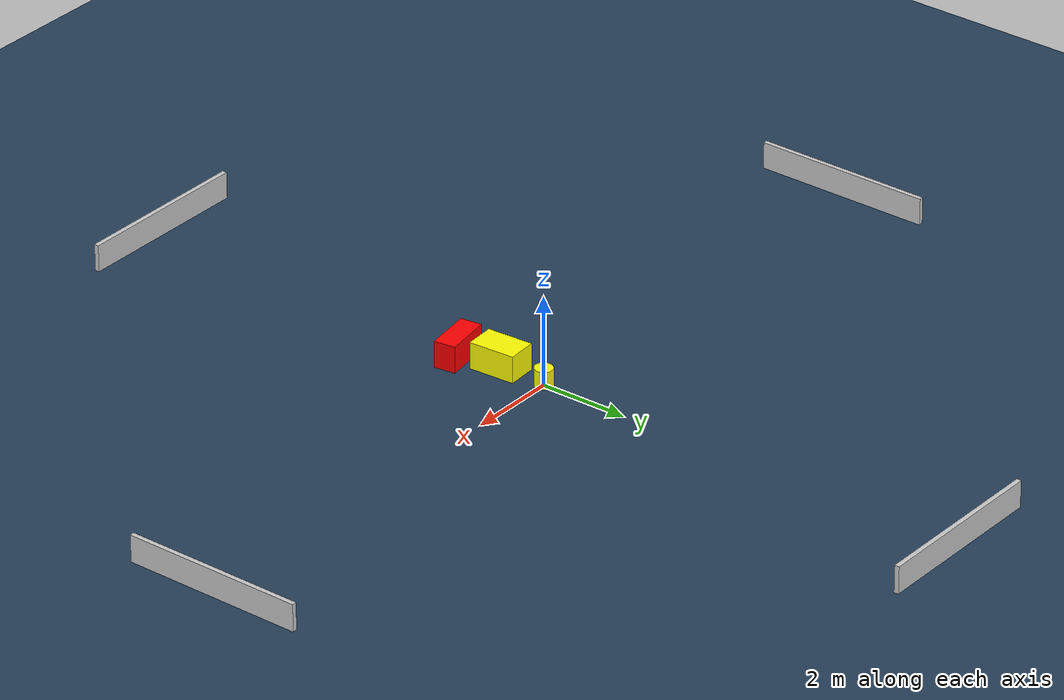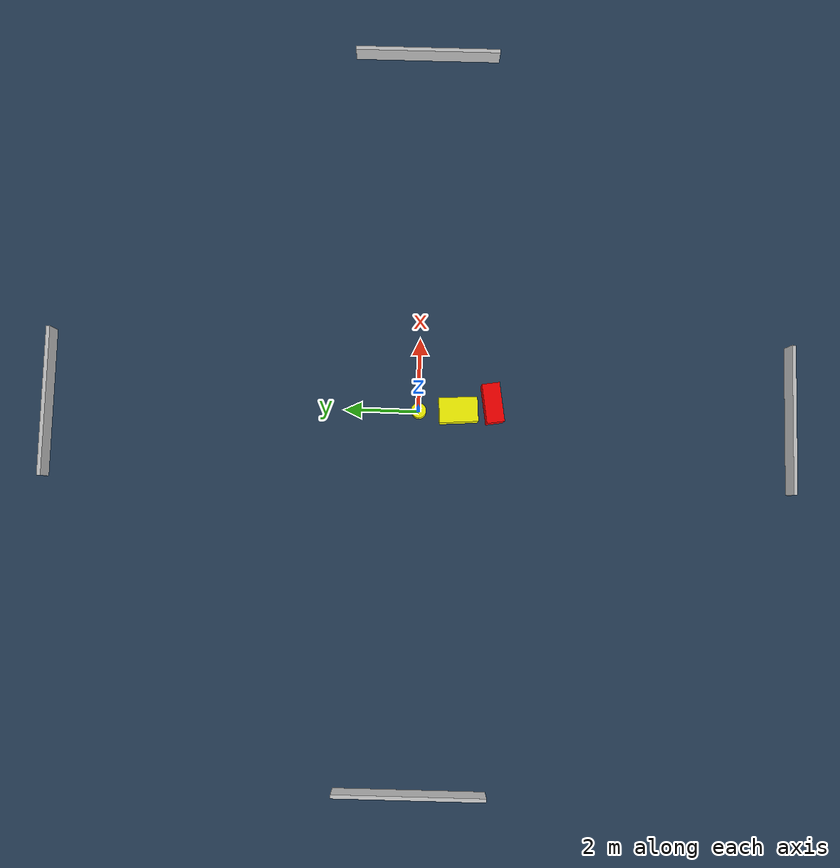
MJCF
<?xml version="1.0" ?>
<mujoco model="generated_environment">
  <option timestep="0.01" integrator="RK4" cone="elliptic"/>
  <default>
    <geom density="1"/>
  </default>
  <asset>
    <texture builtin="gradient" height="3072" name="skybox" rgb1="0.3 0.5 0.7" rgb2="0 0 0" type="skybox" width="512"/>
    <texture builtin="checker" height="300" name="groundplane" rgb1="0.2 0.3 0.4" rgb2="0.1 0.2 0.3" type="2d" width="300"/>
    <material name="groundplane" reflectance="0.2" texrepeat="5 5" texture="groundplane"/>
  </asset>
  <worldbody>
    <light dir="0 0 -1" directional="true" pos="0 0 1.5"/>
    <geom condim="3" friction="0.5 0.005 0.001" material="groundplane" name="floor" pos="0 0 0" size="0 0 0.05" type="plane"/>
    <body name="walls">
      <geom name="wall_1" condim="4" pos="-10.0 0.0 0.3" rgba="0.800000011920929 0.800000011920929 0.800000011920929 1.0" size="0.05 2.0 0.3" type="box"/>
      <geom name="wall_2" condim="4" pos="10.0 0.0 0.3" rgba="0.800000011920929 0.800000011920929 0.800000011920929 1.0" size="0.05 2.0 0.3" type="box"/>
      <geom name="wall_3" condim="4" pos="0.0 -10.0 0.3" rgba="0.800000011920929 0.800000011920929 0.800000011920929 1.0" size="2.0 0.05 0.3" type="box"/>
      <geom name="wall_4" condim="4" pos="0.0 10.0 0.3" rgba="0.800000011920929 0.800000011920929 0.800000011920929 1.0" size="2.0 0.05 0.3" type="box"/>
    </body>
    <body name="robot">
      <joint name="joint_x" type="slide" pos="0 0 0" axis="1 0 0"/>
      <joint name="joint_y" type="slide" pos="0 0 0" axis="0 1 0"/>
      <geom name="robot" type="cylinder" pos="0.0 0.0 0.2" size="0.2 0.2 0.0" mass="5.0" friction="1.0 0.005 0.0001" condim="4" rgba="1.0 1.0 0.0 1.0"/>
    </body>
    <body name="obstacle_1_movable">
      <geom name="obstacle_1_movable" condim="4" pos="0.032102908823374764 -1.0598287085211953 0.3" euler="0 0 3.658835851917863" friction="0.0 0.005 0.001" rgba="1.0 1.0 0.0 1.0" size="0.3302797274736714 0.5157282395226821 0.3" type="box" mass="0.1"/>
      <joint type="free"/>
    </body>
    <body name="obstacle_2_static">
      <geom name="obstacle_2_static" condim="4" pos="0.2399409122512894 -1.9814385317519698 0.3" euler="0 0 188.60014131769734" friction="0.0 0.005 0.001" rgba="1.0 0.0 0.0 1.0" size="0.5264368525905967 0.23864718727252296 0.3" type="box"/>
    </body>
  </worldbody>
  <actuator>
    <motor name="actuator_x" joint="joint_x" gear="1" ctrlrange="-1 1"/>
    <motor name="actuator_y" joint="joint_y" gear="1" ctrlrange="-1 1"/>
  </actuator>
</mujoco>
